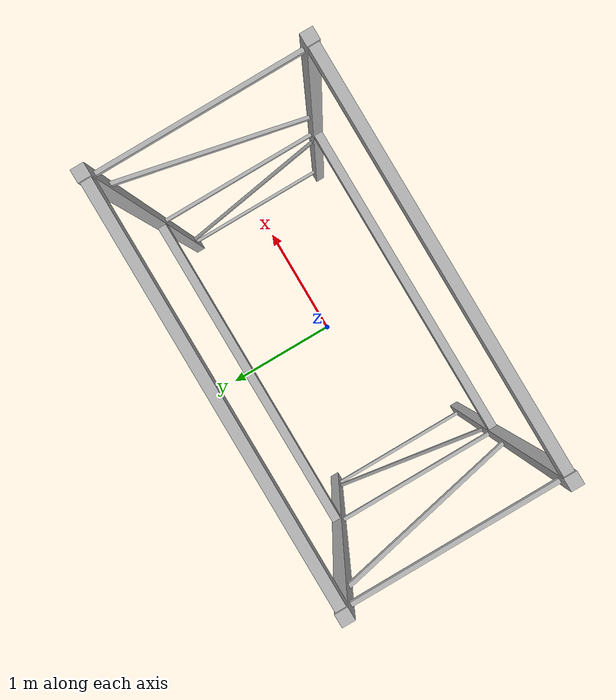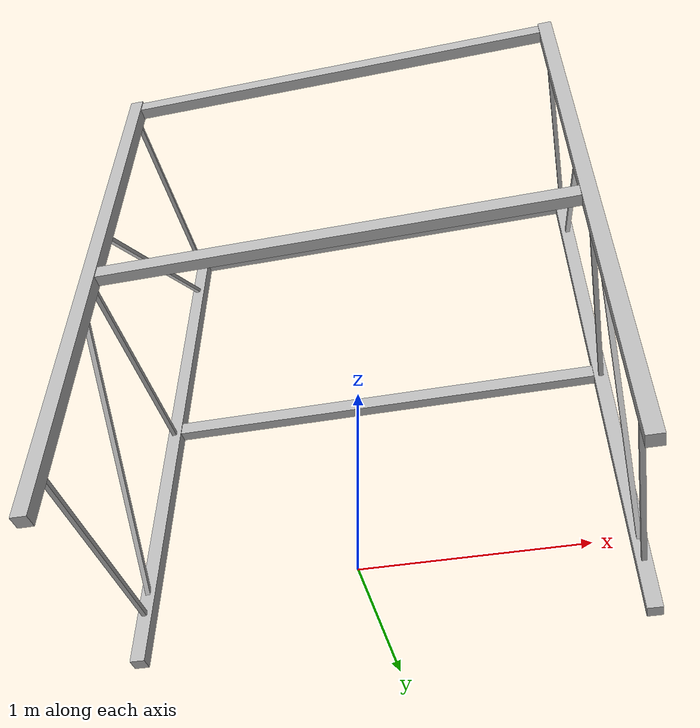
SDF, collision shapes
<?xml version="1.0" ?>
<sdf version="1.6">
  <model name="Pallet_Rack">
    <link name="base_link">
      <visual name="base_visual">
        <geometry>
          <mesh>
            <uri>base_visual.glb</uri>
          </mesh>
        </geometry>
      </visual>
      <collision name="box014034_collider_box">
        <pose>0.0 -0.647701 1.473205 0.0 -0.0 0.0</pose>
        <geometry>
          <box>
            <size>2.5146 0.063502 0.0762</size>
          </box>
        </geometry>
      </collision>
      <collision name="box014034_collider_box.001">
        <pose>0.0 0.647701 1.473205 0.0 -0.0 0.0</pose>
        <geometry>
          <box>
            <size>2.5146 0.063502 0.0762</size>
          </box>
        </geometry>
      </collision>
      <collision name="box014034_collider_box.002">
        <pose>0.0 0.647701 2.997205 0.0 -0.0 0.0</pose>
        <geometry>
          <box>
            <size>2.5146 0.063502 0.0762</size>
          </box>
        </geometry>
      </collision>
      <collision name="box014034_collider_box.003">
        <pose>0.0 -0.647701 2.997205 0.0 -0.0 0.0</pose>
        <geometry>
          <box>
            <size>2.5146 0.063502 0.0762</size>
          </box>
        </geometry>
      </collision>
      <collision name="box014_collider_box">
        <pose>-1.2573 -0.6477 1.524 0.0 -0.0 0.0</pose>
        <geometry>
          <box>
            <size>0.0762 0.0762 3.048</size>
          </box>
        </geometry>
      </collision>
      <collision name="box014007_collider_box">
        <pose>1.2573 -0.6477 1.524 0.0 -0.0 0.0</pose>
        <geometry>
          <box>
            <size>0.0762 0.0762 3.048</size>
          </box>
        </geometry>
      </collision>
      <collision name="box014012_collider_box">
        <pose>-1.2573 0.6477 1.524 0.0 -0.0 0.0</pose>
        <geometry>
          <box>
            <size>0.0762 0.0762 3.048</size>
          </box>
        </geometry>
      </collision>
      <collision name="box014019_collider_box">
        <pose>1.2573 0.6477 1.524 0.0 -0.0 0.0</pose>
        <geometry>
          <box>
            <size>0.0762 0.0762 3.048</size>
          </box>
        </geometry>
      </collision>
      <collision name="box014025_collider_box">
        <pose>-1.2573 -0.0 0.257366 0.0 -0.0 0.0</pose>
        <geometry>
          <box>
            <size>0.0254 1.234421 0.0254</size>
          </box>
        </geometry>
      </collision>
      <collision name="box014026_collider_box">
        <pose>-1.2573 -0.0 1.435715 0.0 -0.0 0.0</pose>
        <geometry>
          <box>
            <size>0.0254 1.234421 0.0254</size>
          </box>
        </geometry>
      </collision>
      <collision name="box014027_collider_box">
        <pose>-1.2573 0.0 2.933138 0.0 -0.0 0.0</pose>
        <geometry>
          <box>
            <size>0.0254 1.234421 0.0254</size>
          </box>
        </geometry>
      </collision>
      <collision name="box014030_collider_box">
        <pose>1.2573 -0.0 0.257366 0.0 -0.0 0.0</pose>
        <geometry>
          <box>
            <size>0.0254 1.234421 0.0254</size>
          </box>
        </geometry>
      </collision>
      <collision name="box014031_collider_box">
        <pose>1.2573 0.0 1.435715 0.0 -0.0 0.0</pose>
        <geometry>
          <box>
            <size>0.0254 1.234421 0.0254</size>
          </box>
        </geometry>
      </collision>
      <collision name="box014032_collider_box">
        <pose>1.2573 0.0 2.933138 0.0 -0.0 0.0</pose>
        <geometry>
          <box>
            <size>0.0254 1.234421 0.0254</size>
          </box>
        </geometry>
      </collision>
      <collision name="box014024_collider_box">
        <pose>-1.2573 -0.007284 2.258983 -0.610865 -0.0 3.141593</pose>
        <geometry>
          <box>
            <size>0.0254 1.62082 0.0254</size>
          </box>
        </geometry>
      </collision>
      <collision name="box014028_collider_box">
        <pose>-1.2573 0.007284 0.801803 0.610866 -0.0 3.141593</pose>
        <geometry>
          <box>
            <size>0.0254 1.62082 0.0254</size>
          </box>
        </geometry>
      </collision>
      <collision name="box014029_collider_box">
        <pose>1.2573 -0.007284 2.258983 -1.570796 0.610865 -1.570796</pose>
        <geometry>
          <box>
            <size>1.62082 0.0254 0.0254</size>
          </box>
        </geometry>
      </collision>
      <collision name="box014033_collider_box">
        <pose>1.2573 0.007284 0.801803 1.570796 0.610866 1.570796</pose>
        <geometry>
          <box>
            <size>1.62082 0.0254 0.0254</size>
          </box>
        </geometry>
      </collision>
    </link>
  </model>
</sdf>
